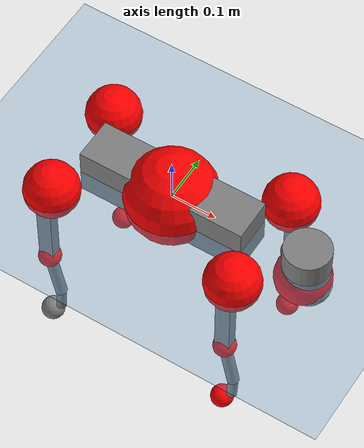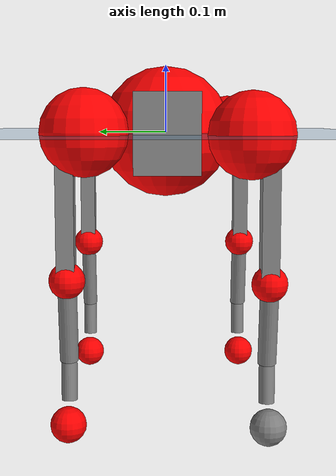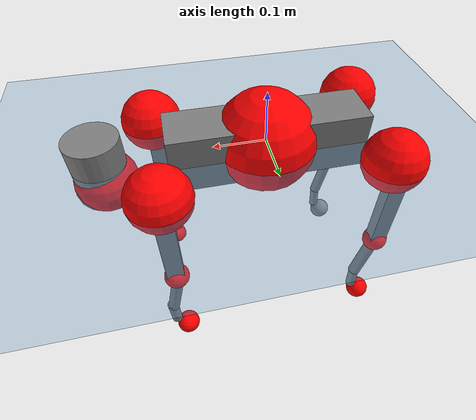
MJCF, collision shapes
<mujoco model="go2">
  <compiler angle="radian" assetdir="assets" balanceinertia="true" inertiafromgeom="false"/>

  <option timestep="0.005" density="1.2" viscosity="2e-05"/>

  <size nkey="1"/>

  <visual>
    <quality shadowsize="8192"/>
    <map shadowclip="0.5"/>
  </visual>

  <default>
    <default class="/">
      <geom contype="0" conaffinity="0" group="1" solref="-1000 -80"/>
      <site size="0.01 0.005 0.005" group="5"/>
      <general forcelimited="true" biastype="affine" gainprm="20" biasprm="0 -20 -0.5"/>
      <default class="go2">
        <joint armature="0.01" damping="0.01" frictionloss="0.2"/>
        <geom condim="1" margin="0.001"/>
        <default class="visual">
          <geom type="mesh" group="2"/>
        </default>
        <default class="collision">
          <geom group="3"/>
          <default class="foot">
            <geom size="0.022 0 0" condim="6" priority="1" friction="0.8 0.02 0.01" solimp="0.015 1 0.022"/>
          </default>
        </default>
        <default class="reward_collision_sphere">
          <geom group="5" rgba="1 0 0 1"/>
        </default>
      </default>
    </default>
  </default>

  <asset>
    <texture type="skybox" colorspace="auto" name="//unnamed_texture_0" builtin="gradient" rgb1="0.95 0.95 0.95" rgb2="0.95 0.95 0.95" width="100" height="600"/>
    <texture type="2d" colorspace="auto" name="texplane" builtin="checker" rgb1="0.345 0.575 0.748" rgb2="0.345 0.575 0.748" markrgb="1 1 1" width="512" height="512"/>
    <material name="MatPlane" class="/" texture="texplane" texuniform="true" texrepeat="2 2" specular="0.9"/>
    <material name="metal" class="/" rgba="0.9 0.95 0.95 1"/>
    <material name="black" class="/" rgba="0 0 0 1"/>
    <material name="white" class="/"/>
    <material name="gray" class="/" rgba="0.671705 0.692426 0.77427 1"/>
    <mesh name="base_0" class="/" file="base_0.obj"/>
    <mesh name="base_1" class="/" file="base_1.obj"/>
    <mesh name="base_2" class="/" file="base_2.obj"/>
    <mesh name="base_3" class="/" file="base_3.obj"/>
    <mesh name="base_4" class="/" file="base_4.obj"/>
    <mesh name="hip_0" class="/" file="hip_0.obj"/>
    <mesh name="hip_1" class="/" file="hip_1.obj"/>
    <mesh name="thigh_0" class="/" file="thigh_0.obj"/>
    <mesh name="thigh_1" class="/" file="thigh_1.obj"/>
    <mesh name="thigh_mirror_0" class="/" file="thigh_mirror_0.obj"/>
    <mesh name="thigh_mirror_1" class="/" file="thigh_mirror_1.obj"/>
    <mesh name="calf_0" class="/" file="calf_0.obj"/>
    <mesh name="calf_1" class="/" file="calf_1.obj"/>
    <mesh name="calf_mirror_0" class="/" file="calf_mirror_0.obj"/>
    <mesh name="calf_mirror_1" class="/" file="calf_mirror_1.obj"/>
    <mesh name="foot" class="/" file="foot.obj"/>
  </asset>

  <worldbody>
    <geom name="floor" class="/" size="100 100 0.125" type="plane" group="0" material="MatPlane"/>
    <light name="toplight_shadow" class="/" pos="0 0 5" dir="0.0990148 0.0990148 -0.990148" type="directional" ambient="0.04 0.04 0.04" diffuse="0.55 0.55 0.55" specular="0.12 0.12 0.12"/>
    <light name="toplight_fill" class="/" pos="0 0 5" dir="0.0990148 0.0990148 -0.990148" type="directional" castshadow="false" ambient="0.04 0.04 0.04" diffuse="0.3 0.3 0.3" specular="0.08 0.08 0.08"/>
    <body name="trunk" childclass="go2" pos="0.000268798 0.000201826 0.000721936" quat="1 -2.21208e-05 -4.44119e-05 -7.18027e-05">
      <inertial pos="0.0232613 -0.00187385 -0.00478805" quat="-0.00154586 0.711833 0.00110565 0.702346" mass="6.28989" diaginertia="0.140155 0.0705324 0.0158304"/>
      <joint name="//unnamed_joint_0" type="free" armature="0" damping="0" frictionloss="0"/>
      <geom name="//unnamed_geom_1" class="visual" material="black" mesh="base_0"/>
      <geom name="//unnamed_geom_2" class="visual" material="black" mesh="base_1"/>
      <geom name="//unnamed_geom_3" class="visual" material="black" mesh="base_2"/>
      <geom name="//unnamed_geom_4" class="visual" material="white" mesh="base_3"/>
      <geom name="//unnamed_geom_5" class="visual" material="gray" mesh="base_4"/>
      <geom name="trunk_1" class="collision" size="0.183382 0.0455775 0.0555704" type="box"/>
      <geom name="trunk_2" class="collision" size="0.048746 0.0438714" pos="0.303611 0 0.00919317" type="cylinder"/>
      <geom name="trunk_3" class="collision" size="0.0458212" pos="0.312134 0 -0.055159"/>
      <geom name="//unnamed_geom_9" class="reward_collision_sphere" size="0.097492"/>
      <geom name="//unnamed_geom_10" class="reward_collision_sphere" size="0.0584952" pos="0.298285 0 -0.0413693"/>
      <site name="imu" pos="-0.029766 0.000512417 0.0393546" size="0.0097492"/>
      <camera name="track" pos="0 -1.88028 0" quat="0.707107 0.707107 0 0" mode="trackcom"/>
      <camera name="ego_camera" pos="0.332375 0 0.0413693" quat="-0.5 -0.5 0.5 0.5"/>
      <body name="FL_hip" pos="0.205188 0.0439183 0.000539785" quat="1 9.72647e-05 -2.98523e-05 2.97991e-05">
        <inertial pos="-0.00597236 0.00141199 0.000310664" quat="0.499121 0.501556 0.510215 0.488876" mass="0.625888" diaginertia="0.00121008 0.000443195 0.000315437"/>
        <joint name="FL_hip_joint" pos="0 0 0" axis="0.999999 0.000495982 0.00105352" stiffness="0.0129459" range="-1.03079 1.04415" armature="0.00964939" damping="0.0122586" frictionloss="0.19518"/>
        <geom name="//unnamed_geom_11" class="visual" material="metal" mesh="hip_0"/>
        <geom name="//unnamed_geom_12" class="visual" material="gray" mesh="hip_1"/>
        <geom name="//unnamed_geom_13" class="collision" size="0.0448463 0.0194984" pos="0 0.0752111 0" quat="0.707107 0.707107 0 0" type="cylinder"/>
        <geom name="//unnamed_geom_14" class="reward_collision_sphere" size="0.0584952" pos="0 0.0658097 0"/>
        <body name="FL_thigh" pos="-0.000463094 0.0887046 0.000300905" quat="0.999999 -0.0002509 -0.000796019 -0.000573635">
          <inertial pos="-0.00423031 -0.0187338 -0.0305421" quat="0.829973 0.0859088 -0.0153079 0.550936" mass="1.05613" diaginertia="0.00803722 0.00438769 0.000576648"/>
          <joint name="FL_thigh_joint" pos="0 0 0" axis="0.00662388 0.999977 0.00137262" stiffness="0.00135971" range="-1.56497 3.46257" armature="0.0107137" damping="0.00864049" frictionloss="0.202027"/>
          <geom name="//unnamed_geom_15" class="visual" material="metal" mesh="thigh_0"/>
          <geom name="//unnamed_geom_16" class="visual" material="gray" mesh="thigh_1"/>
          <geom name="//unnamed_geom_17" class="collision" size="0.103829 0.0119428 0.0165736" pos="0 0 -0.0979073" quat="0.707107 0 0.707107 0" type="box"/>
          <body name="FL_calf" pos="-0.00119422 -0.000141712 -0.195881" quat="1 -1.85797e-05 -0.000117273 0.000166104">
            <inertial pos="0.00558598 -1.56754e-05 -0.130101" quat="0.712885 0.00167516 -0.00779284 0.701236" mass="0.222351" diaginertia="0.00205224 0.00110106 3.48494e-05"/>
            <joint name="FL_calf_joint" pos="0 0 0" axis="0.000843132 0.999997 0.00212717" stiffness="0.00292105" range="-2.68427 -0.823244" armature="0.0101438" damping="0" frictionloss="0.187231"/>
            <geom name="//unnamed_geom_18" class="visual" material="gray" mesh="calf_0"/>
            <geom name="//unnamed_geom_19" class="visual" material="black" mesh="calf_1"/>
            <geom name="FL_calf0" class="collision" size="0.011699 0.0584952" pos="0.00852242 0 -0.055159" quat="0.994493 0 -0.104807 0" type="cylinder"/>
            <geom name="//unnamed_geom_21" class="collision" size="0.0107241 0.0316849" pos="0.0213061 0 -0.136059" quat="0.999688 0 0.0249974 0" type="cylinder"/>
            <geom name="//unnamed_geom_22" class="visual" pos="0 0 -0.195815" quat="1 0 0 0" material="black" mesh="foot"/>
            <geom name="FL_foot" class="foot" size="0.0172081" pos="-0.00213061 0 -0.195815"/>
            <geom name="//unnamed_geom_24" class="reward_collision_sphere" size="0.024373"/>
            <geom name="//unnamed_geom_25" class="reward_collision_sphere" size="0.024373" pos="-0.00213061 0 -0.195815"/>
            <site name="FL_foot" class="foot" pos="-0.00213061 0 -0.195815" size="0.0097492"/>
          </body>
        </body>
      </body>
      <body name="FR_hip" pos="0.20458 -0.0421133 -0.000859251" quat="1 -5.10824e-06 -0.000196398 -1.35761e-05">
        <inertial pos="-0.00622197 -0.00267311 0.000302955" quat="0.502574 0.500212 0.499687 0.497514" mass="0.633306" diaginertia="0.00120762 0.000437791 0.00031044"/>
        <joint name="FR_hip_joint" pos="0 0 0" axis="0.999984 0.00528642 0.00194926" range="-1.03958 1.06907" armature="0.0102753" damping="0.0178829" frictionloss="0.189462"/>
        <geom name="//unnamed_geom_26" class="visual" pos="0 1.81388e-10 7.78012e-09" quat="4.63268e-05 1 0 0" material="metal" mesh="hip_0"/>
        <geom name="//unnamed_geom_27" class="visual" pos="0 2.94052e-10 -1.92432e-08" quat="4.63268e-05 1 0 0" material="gray" mesh="hip_1"/>
        <geom name="//unnamed_geom_28" class="collision" size="0.0448463 0.0194984" pos="0 -0.0752111 0" quat="0.707107 0.707107 0 0" type="cylinder"/>
        <geom name="//unnamed_geom_29" class="reward_collision_sphere" size="0.0584952" pos="0 -0.0658097 0"/>
        <body name="FR_thigh" pos="0.000130578 -0.0892935 -0.000327232" quat="1 -1.99624e-05 6.06348e-05 9.47144e-06">
          <inertial pos="-0.00486891 0.0214541 -0.028365" quat="0.55361 -0.0171102 0.0821368 0.828539" mass="1.06044" diaginertia="0.00819215 0.00429742 0.000577937"/>
          <joint name="FR_thigh_joint" pos="0 0 0" axis="-0.000816542 -0.999999 -0.000884141" stiffness="0.00932661" range="-3.48727 1.55481" armature="0.00916333" damping="0.0166923" frictionloss="0.199664"/>
          <geom name="//unnamed_geom_30" class="visual" material="metal" mesh="thigh_mirror_0"/>
          <geom name="//unnamed_geom_31" class="visual" material="gray" mesh="thigh_mirror_1"/>
          <geom name="//unnamed_geom_32" class="collision" size="0.103829 0.0119428 0.0165736" pos="0 0 -0.0979073" quat="0.707107 0 0.707107 0" type="box"/>
          <body name="FR_calf" pos="0.000449371 0.000266114 -0.194081" quat="1 4.16283e-06 -7.25485e-09 9.99705e-07">
            <inertial pos="0.00710998 0.000528712 -0.12996" quat="0.700396 -0.00509756 -0.000843283 0.713736" mass="0.22901" diaginertia="0.00212056 0.00110176 3.5993e-05"/>
            <joint name="FR_calf_joint" pos="0 0 0" axis="0.000754958 -0.999997 -0.00231723" range="0.823039 2.71234" armature="0.00955525" damping="0.00328611" frictionloss="0.204267"/>
            <geom name="//unnamed_geom_33" class="visual" material="gray" mesh="calf_mirror_0"/>
            <geom name="//unnamed_geom_34" class="visual" material="black" mesh="calf_mirror_1"/>
            <geom name="FR_calf0" class="collision" size="0.012674 0.0584952" pos="0.010653 0 -0.055159" quat="0.995004 0 -0.0998334 0" type="cylinder"/>
            <geom name="//unnamed_geom_36" class="collision" size="0.0107241 0.0316849" pos="0.0213061 0 -0.136059" quat="0.999688 0 0.0249974 0" type="cylinder"/>
            <geom name="//unnamed_geom_37" class="visual" pos="0 0 -0.195815" quat="1 0 0 0" material="black" mesh="foot"/>
            <geom name="FR_foot" class="foot" size="0.0205882" pos="-0.00213061 0 -0.195815"/>
            <geom name="//unnamed_geom_39" class="reward_collision_sphere" size="0.024373"/>
            <geom name="//unnamed_geom_40" class="reward_collision_sphere" size="0.024373" pos="-0.00213061 0 -0.195815"/>
            <site name="FR_foot" class="foot" pos="-0.00213061 0 -0.195815" size="0.0097492"/>
          </body>
        </body>
      </body>
      <body name="RL_hip" pos="-0.205942 0.0427844 0.00193098" quat="1 0.000427009 -7.17444e-05 0.00044771">
        <inertial pos="0.00575213 0.00191096 -0.000325282" quat="0.50526 0.498531 0.497579 0.498592" mass="0.619584" diaginertia="0.00122589 0.000448155 0.000316274"/>
        <joint name="RL_hip_joint" pos="0 0 0" axis="-0.999813 0.0018788 0.0192726" stiffness="0.00745053" range="-1.02731 1.06756" armature="0.00979115" damping="0.0153314" frictionloss="0.199043"/>
        <geom name="//unnamed_geom_41" class="visual" pos="-1.27177e-09 0 -2.49296e-07" quat="4.63268e-05 0 1 0" material="metal" mesh="hip_0"/>
        <geom name="//unnamed_geom_42" class="visual" pos="-2.06169e-09 0 -2.2109e-07" quat="4.63268e-05 0 1 0" material="gray" mesh="hip_1"/>
        <geom name="//unnamed_geom_43" class="collision" size="0.0448463 0.0194984" pos="0 0.0752111 0" quat="0.707107 0.707107 0 0" type="cylinder"/>
        <geom name="//unnamed_geom_44" class="reward_collision_sphere" size="0.0584952" pos="0 0.0658097 0"/>
        <body name="RL_thigh" pos="-0.000329805 0.0908812 0.000704164" quat="1 -0.000206434 -0.000118825 0.000733785">
          <inertial pos="-0.00369111 -0.0185029 -0.0310799" quat="0.830125 0.084039 -0.0185539 0.550895" mass="1.04308" diaginertia="0.00824419 0.00425495 0.000586148"/>
          <joint name="RL_thigh_joint" pos="0 0 0" axis="-0.00371736 0.999973 -0.00631586" stiffness="0.00243472" range="-0.533765 4.54271" armature="0.00961241" damping="0.0113045" frictionloss="0.202115"/>
          <geom name="//unnamed_geom_45" class="visual" material="metal" mesh="thigh_0"/>
          <geom name="//unnamed_geom_46" class="visual" material="gray" mesh="thigh_1"/>
          <geom name="//unnamed_geom_47" class="collision" size="0.103829 0.0119428 0.0165736" pos="0 0 -0.0979073" quat="0.707107 0 0.707107 0" type="box"/>
          <body name="RL_calf" pos="-0.000132619 -0.000899128 -0.195243" quat="1 0.000232474 0.000176672 6.76814e-05">
            <inertial pos="0.00639361 0.000450356 -0.130276" quat="0.710176 0.00233378 -0.00430281 0.704007" mass="0.226618" diaginertia="0.00205169 0.00107717 3.48412e-05"/>
            <joint name="RL_calf_joint" pos="0 0 0" axis="0.00674487 0.999966 -0.00464235" stiffness="0.006624" range="-2.6839 -0.838193" armature="0.0107347" damping="0" frictionloss="0.19863"/>
            <geom name="//unnamed_geom_48" class="visual" material="gray" mesh="calf_0"/>
            <geom name="//unnamed_geom_49" class="visual" material="black" mesh="calf_1"/>
            <geom name="RL_calf0" class="collision" size="0.012674 0.0584952" pos="0.010653 0 -0.055159" quat="0.995004 0 -0.0998334 0" type="cylinder"/>
            <geom name="//unnamed_geom_51" class="collision" size="0.0107241 0.0316849" pos="0.0213061 0 -0.136059" quat="0.999688 0 0.0249974 0" type="cylinder"/>
            <geom name="//unnamed_geom_52" class="visual" pos="0 0 -0.195815" quat="1 0 0 0" material="black" mesh="foot"/>
            <geom name="RL_foot" class="foot" size="0.0194" pos="-0.00213061 0 -0.195815"/>
            <geom name="//unnamed_geom_54" class="reward_collision_sphere" size="0.024373"/>
            <geom name="//unnamed_geom_55" class="reward_collision_sphere" size="0.024373" pos="-0.00213061 0 -0.195815"/>
            <site name="RL_foot" class="foot" pos="-0.00213061 0 -0.195815" size="0.0097492"/>
          </body>
        </body>
      </body>
      <body name="RR_hip" pos="-0.207538 -0.0447331 -0.00139502" quat="0.999999 -0.000212231 0.00100422 0.000309655">
        <inertial pos="0.00584816 -0.00124653 -0.000174721" quat="0.499217 0.497341 0.498314 0.505091" mass="0.636292" diaginertia="0.00122683 0.00043872 0.000327351"/>
        <joint name="RR_hip_joint" pos="0 0 0" axis="-1 -0.000479247 -7.73145e-05" stiffness="0.000828236" range="-1.05019 1.04347" armature="0.0104731" damping="0.0054422" frictionloss="0.190124"/>
        <geom name="//unnamed_geom_56" class="visual" pos="1.26744e-09 1.81388e-10 -2.57076e-07" quat="2.14617e-09 4.63268e-05 4.63268e-05 -1" material="metal" mesh="hip_0"/>
        <geom name="//unnamed_geom_57" class="visual" pos="2.07241e-09 2.94052e-10 -2.01847e-07" quat="2.14617e-09 4.63268e-05 4.63268e-05 -1" material="gray" mesh="hip_1"/>
        <geom name="//unnamed_geom_58" class="collision" size="0.0448463 0.0194984" pos="0 -0.0752111 0" quat="0.707107 0.707107 0 0" type="cylinder"/>
        <geom name="//unnamed_geom_59" class="reward_collision_sphere" size="0.0584952" pos="0 -0.0658097 0"/>
        <body name="RR_thigh" pos="0.00084019 -0.0899101 -2.89553e-05" quat="1 -0.000290329 7.92333e-05 0.000586989">
          <inertial pos="-0.0035248 0.0207435 -0.029876" quat="0.551736 -0.0199085 0.0825931 0.82968" mass="1.0563" diaginertia="0.0080922 0.00431435 0.000577811"/>
          <joint name="RR_thigh_joint" pos="0 0 0" axis="-0.00641642 -0.999964 -0.0055895" range="-4.53823 0.565868" armature="0.00882953" damping="0.015392" frictionloss="0.192216"/>
          <geom name="//unnamed_geom_60" class="visual" material="metal" mesh="thigh_mirror_0"/>
          <geom name="//unnamed_geom_61" class="visual" material="gray" mesh="thigh_mirror_1"/>
          <geom name="//unnamed_geom_62" class="collision" size="0.103829 0.0119428 0.0165736" pos="0 0 -0.0979073" quat="0.707107 0 0.707107 0" type="box"/>
          <body name="RR_calf" pos="0.0010526 -0.000813548 -0.196413" quat="1 -0.00021951 -0.000214165 -0.000141026">
            <inertial pos="0.00735117 0.00122492 -0.130328" quat="0.703624 -0.00499851 0.000944471 0.710555" mass="0.222649" diaginertia="0.00202569 0.00106044 3.46176e-05"/>
            <joint name="RR_calf_joint" pos="0 0 0" axis="0.000570013 -0.999994 0.00349739" range="0.862736 2.70791" armature="0.00939794" damping="0.0106486" frictionloss="0.18751"/>
            <geom name="//unnamed_geom_63" class="visual" material="gray" mesh="calf_mirror_0"/>
            <geom name="//unnamed_geom_64" class="visual" material="black" mesh="calf_mirror_1"/>
            <geom name="RR_calf0" class="collision" size="0.012674 0.0584952" pos="0.010653 0 -0.055159" quat="0.995004 0 -0.0998334 0" type="cylinder"/>
            <geom name="//unnamed_geom_66" class="collision" size="0.0107241 0.0316849" pos="0.0213061 0 -0.136059" quat="0.999688 0 0.0249974 0" type="cylinder"/>
            <geom name="//unnamed_geom_67" class="visual" pos="0 0 -0.195815" quat="1 0 0 0" material="black" mesh="foot"/>
            <geom name="RR_foot" class="foot" size="0.025031" pos="-0.00213061 0 -0.195815"/>
            <geom name="//unnamed_geom_69" class="reward_collision_sphere" size="0.024373"/>
            <geom name="//unnamed_geom_70" class="reward_collision_sphere" size="0.024373" pos="-0.00213061 0 -0.195815"/>
            <site name="RR_foot" class="foot" pos="-0.00213061 0 -0.195815" size="0.0097492"/>
          </body>
        </body>
      </body>
    </body>
  </worldbody>

  <contact>
    <pair class="/" geom1="floor" geom2="FL_foot" name="//unnamed_contact_0"/>
    <pair class="/" geom1="floor" geom2="FR_foot" name="//unnamed_contact_1"/>
    <pair class="/" geom1="floor" geom2="RL_foot" name="//unnamed_contact_2"/>
    <pair class="/" geom1="floor" geom2="RR_foot" name="//unnamed_contact_3"/>
  </contact>

  <actuator>
    <general name="FL_hip" class="/" joint="FL_hip_joint" forcerange="-22.1934 22.1934" gainprm="19.5311" biasprm="0 -19.5311 -0.488164"/>
    <general name="FL_thigh" class="/" joint="FL_thigh_joint" forcerange="-22.9592 22.9592" gainprm="19.5311" biasprm="0 -19.5311 -0.488164"/>
    <general name="FL_calf" class="/" joint="FL_calf_joint" forcerange="-44.1427 44.1427" gainprm="19.5311" biasprm="0 -19.5311 -0.488164"/>
    <general name="FR_hip" class="/" joint="FR_hip_joint" forcerange="-23.8099 23.8099" gainprm="19.5311" biasprm="0 -19.5311 -0.488164"/>
    <general name="FR_thigh" class="/" joint="FR_thigh_joint" forcerange="-23.2085 23.2085" gainprm="19.5311" biasprm="0 -19.5311 -0.488164"/>
    <general name="FR_calf" class="/" joint="FR_calf_joint" forcerange="-43.6692 43.6692" gainprm="19.5311" biasprm="0 -19.5311 -0.488164"/>
    <general name="RL_hip" class="/" joint="RL_hip_joint" forcerange="-23.8421 23.8421" gainprm="19.5311" biasprm="0 -19.5311 -0.488164"/>
    <general name="RL_thigh" class="/" joint="RL_thigh_joint" forcerange="-23.4383 23.4383" gainprm="19.5311" biasprm="0 -19.5311 -0.488164"/>
    <general name="RL_calf" class="/" joint="RL_calf_joint" forcerange="-42.8744 42.8744" gainprm="19.5311" biasprm="0 -19.5311 -0.488164"/>
    <general name="RR_hip" class="/" joint="RR_hip_joint" forcerange="-23.9281 23.9281" gainprm="19.5311" biasprm="0 -19.5311 -0.488164"/>
    <general name="RR_thigh" class="/" joint="RR_thigh_joint" forcerange="-22.2993 22.2993" gainprm="19.5311" biasprm="0 -19.5311 -0.488164"/>
    <general name="RR_calf" class="/" joint="RR_calf_joint" forcerange="-46.7766 46.7766" gainprm="19.5311" biasprm="0 -19.5311 -0.488164"/>
  </actuator>

  <sensor>
    <gyro site="imu" name="imu_angular_velocity"/>
    <velocimeter site="imu" name="imu_linear_velocity"/>
    <framelinvel objtype="site" objname="FL_foot" name="FL_foot_global_linear_velocity"/>
    <framelinvel objtype="site" objname="FR_foot" name="FR_foot_global_linear_velocity"/>
    <framelinvel objtype="site" objname="RL_foot" name="RL_foot_global_linear_velocity"/>
    <framelinvel objtype="site" objname="RR_foot" name="RR_foot_global_linear_velocity"/>
  </sensor>

  <keyframe>
    <key name="home" qpos="0 0 0.325 1 0 0 0 0.1 0.8 -1.5 -0.1 -0.8 1.5 -0.1 0.8 -1.5 0.1 -0.8 1.5"/>
  </keyframe>
</mujoco>
